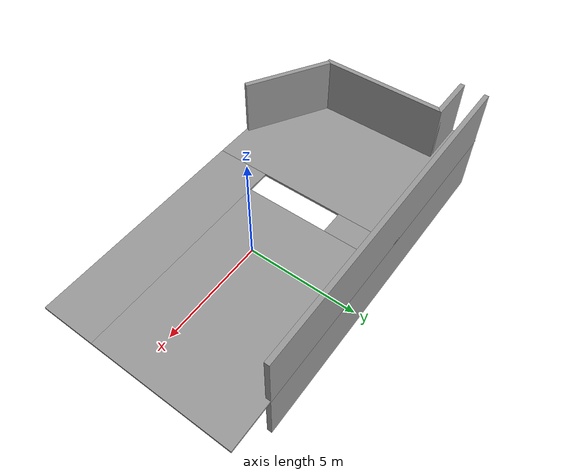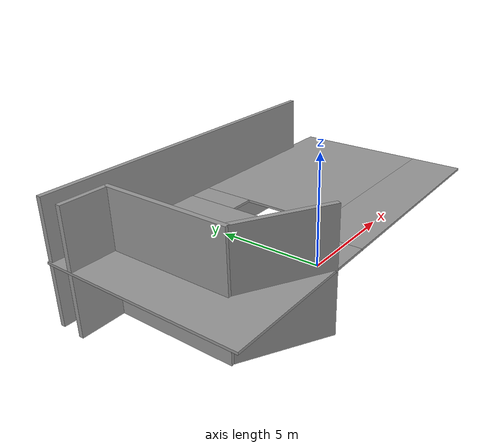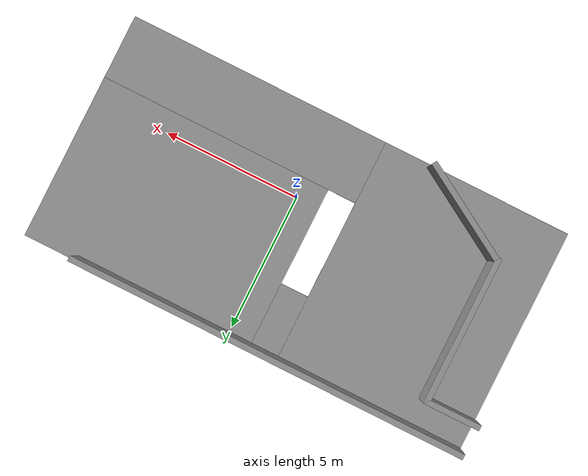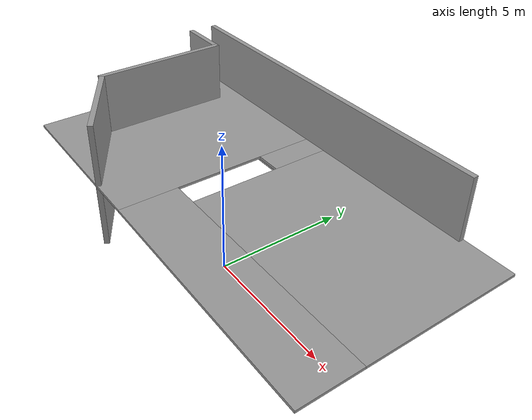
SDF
<sdf version="1.4">
 <model name="ramp_House_Building">
  <link name="Floor_0">
   <pose>-0.578947 1.16316 2.5 0 -0 0</pose>
   <visual name="Floor_0_Visual_0">
    <pose>-4.68455 0 0.05 0 -0 0</pose>
    <geometry><box><size>6.8074 8.18134 0.1</size></box></geometry>
    <material>
     <script><uri>file://media/materials/scripts/gazebo.material</uri><name>Gazebo/Grey</name></script>
    </material>
   </visual>
   <collision name="Floor_0_Collision_0">
    <geometry><box><size>6.8074 8.18134 0.1</size></box></geometry>
    <pose>-4.68455 0 0.05 0 -0 0</pose>
   </collision>
   <visual name="Floor_0_Visual_1">
    <pose>3.4037 -2.9548 0.05 0 -0 0</pose>
    <geometry><box><size>9.36909 2.27173 0.1</size></box></geometry>
    <material>
     <script><uri>file://media/materials/scripts/gazebo.material</uri><name>Gazebo/Grey</name></script>
    </material>
   </visual>
   <collision name="Floor_0_Collision_1">
    <geometry><box><size>9.36909 2.27173 0.1</size></box></geometry>
    <pose>3.4037 -2.9548 0.05 0 -0 0</pose>
   </collision>
   <visual name="Floor_0_Visual_2">
    <pose>3.9037 1.13586 0.05 0 -0 0</pose>
    <geometry><box><size>8.36909 5.90961 0.1</size></box></geometry>
    <material>
     <script><uri>file://media/materials/scripts/gazebo.material</uri><name>Gazebo/Grey</name></script>
    </material>
   </visual>
   <collision name="Floor_0_Collision_2">
    <geometry><box><size>8.36909 5.90961 0.1</size></box></geometry>
    <pose>3.9037 1.13586 0.05 0 -0 0</pose>
   </collision>
   <visual name="Floor_0_Visual_3">
    <pose>-0.780845 2.88586 0.05 0 -0 0</pose>
    <geometry><box><size>1 2.40961 0.1</size></box></geometry>
    <material>
     <script><uri>file://media/materials/scripts/gazebo.material</uri><name>Gazebo/Grey</name></script>
    </material>
   </visual>
   <collision name="Floor_0_Collision_3">
    <geometry><box><size>1 2.40961 0.1</size></box></geometry>
    <pose>-0.780845 2.88586 0.05 0 -0 0</pose>
   </collision>
  </link>
  <link name="Wall_17">
   <collision name="Wall_17_Collision">
    <geometry><box><size>2.01057 0.2 2.5</size></box></geometry>
    <pose>0 0 1.25 0 -0 0</pose>
   </collision>
   <visual name="Wall_17_Visual">
    <pose>0 0 1.25 0 -0 0</pose>
    <geometry><box><size>2.01057 0.2 2.5</size></box></geometry>
    <material>
     <script><uri>file://media/materials/scripts/gazebo.material</uri><name>Gazebo/Grey</name></script>
    </material>
   </visual>
   <velocity_decay><linear>0</linear><angular>0</angular></velocity_decay>
   <pose>-7.66191 4.08982 0 0 -0 0</pose>
  </link>
  <link name="Wall_18">
   <collision name="Wall_18_Collision">
    <geometry><box><size>5.28064 0.2 2.5</size></box></geometry>
    <pose>0 0 1.25 0 -0 0</pose>
   </collision>
   <visual name="Wall_18_Visual">
    <pose>0 0 1.25 0 -0 0</pose>
    <geometry><box><size>5.28064 0.2 2.5</size></box></geometry>
    <material>
     <script><uri>file://media/materials/scripts/gazebo.material</uri><name>Gazebo/Grey</name></script>
    </material>
   </visual>
   <velocity_decay><linear>0</linear><angular>0</angular></velocity_decay>
   <pose>-6.75662 1.5495 0 0 0 -1.5708</pose>
  </link>
  <link name="Wall_25">
   <collision name="Wall_25_Collision">
    <geometry><box><size>14.2183 0.2 2.5</size></box></geometry>
    <pose>0 0 1.25 0 -0 0</pose>
   </collision>
   <visual name="Wall_25_Visual">
    <pose>0 0 1.25 0 -0 0</pose>
    <geometry><box><size>14.2183 0.2 2.5</size></box></geometry>
    <material>
     <script><uri>file://media/materials/scripts/gazebo.material</uri><name>Gazebo/Grey</name></script>
    </material>
   </visual>
   <velocity_decay><linear>0</linear><angular>0</angular></velocity_decay>
   <pose>-1.50309 5.15383 0 0 -0 0</pose>
  </link>
  <link name="Wall_28">
   <collision name="Wall_28_Collision">
    <geometry><box><size>3.72545 0.2 2.5</size></box></geometry>
    <pose>0 0 1.25 0 -0 0</pose>
   </collision>
   <visual name="Wall_28_Visual">
    <pose>0 0 1.25 0 -0 0</pose>
    <geometry><box><size>3.72545 0.2 2.5</size></box></geometry>
    <material>
     <script><uri>file://media/materials/scripts/gazebo.material</uri><name>Gazebo/Grey</name></script>
    </material>
   </visual>
   <velocity_decay><linear>0</linear><angular>0</angular></velocity_decay>
   <pose>-5.11154 -1.93246 2.5 0 0 -0.532592</pose>
  </link>
  <link name="Wall_31">
   <collision name="Wall_31_Collision">
    <geometry><box><size>2.01057 0.2 2.5</size></box></geometry>
    <pose>0 0 1.25 0 -0 0</pose>
   </collision>
   <visual name="Wall_31_Visual">
    <pose>0 0 1.25 0 -0 0</pose>
    <geometry><box><size>2.01057 0.2 2.5</size></box></geometry>
    <material>
     <script><uri>file://media/materials/scripts/gazebo.material</uri><name>Gazebo/Grey</name></script>
    </material>
   </visual>
   <velocity_decay><linear>0</linear><angular>0</angular></velocity_decay>
   <pose>-7.66191 4.08982 2.5 0 -0 0</pose>
  </link>
  <link name="Wall_32">
   <collision name="Wall_32_Collision">
    <geometry><box><size>5.28064 0.2 2.5</size></box></geometry>
    <pose>0 0 1.25 0 -0 0</pose>
   </collision>
   <visual name="Wall_32_Visual">
    <pose>0 0 1.25 0 -0 0</pose>
    <geometry><box><size>5.28064 0.2 2.5</size></box></geometry>
    <material>
     <script><uri>file://media/materials/scripts/gazebo.material</uri><name>Gazebo/Grey</name></script>
    </material>
   </visual>
   <velocity_decay><linear>0</linear><angular>0</angular></velocity_decay>
   <pose>-6.75662 1.5495 2.5 0 0 -1.5708</pose>
  </link>
  <link name="Wall_35">
   <collision name="Wall_35_Collision">
    <geometry><box><size>14.2183 0.2 2.5</size></box></geometry>
    <pose>0 0 1.25 0 -0 0</pose>
   </collision>
   <visual name="Wall_35_Visual">
    <pose>0 0 1.25 0 -0 0</pose>
    <geometry><box><size>14.2183 0.2 2.5</size></box></geometry>
    <material>
     <script><uri>file://media/materials/scripts/gazebo.material</uri><name>Gazebo/Grey</name></script>
    </material>
   </visual>
   <velocity_decay><linear>0</linear><angular>0</angular></velocity_decay>
   <pose>-1.50309 5.15383 2.5 0 -0 0</pose>
  </link>
  <link name="Wall_6">
   <collision name="Wall_6_Collision">
    <geometry><box><size>3.72545 0.2 2.5</size></box></geometry>
    <pose>0 0 1.25 0 -0 0</pose>
   </collision>
   <visual name="Wall_6_Visual">
    <pose>0 0 1.25 0 -0 0</pose>
    <geometry><box><size>3.72545 0.2 2.5</size></box></geometry>
    <material>
     <script><uri>file://media/materials/scripts/gazebo.material</uri><name>Gazebo/Grey</name></script>
    </material>
   </visual>
   <velocity_decay><linear>0</linear><angular>0</angular></velocity_decay>
   <pose>-5.11154 -1.93246 0 0 0 -0.532592</pose>
  </link>
  <static>1</static>
 </model>
</sdf>
